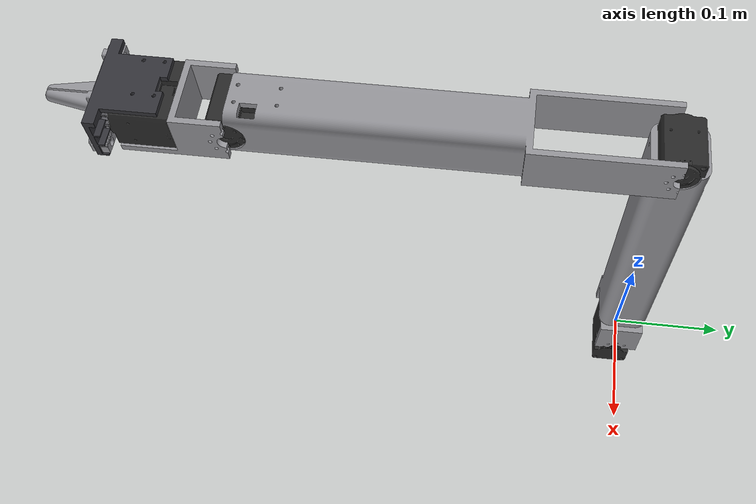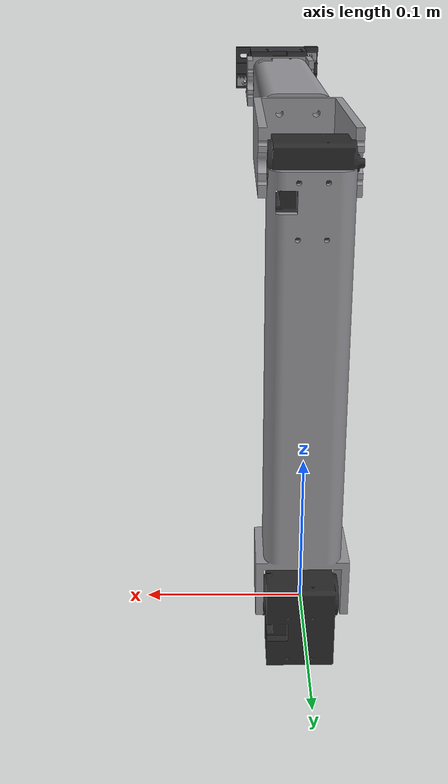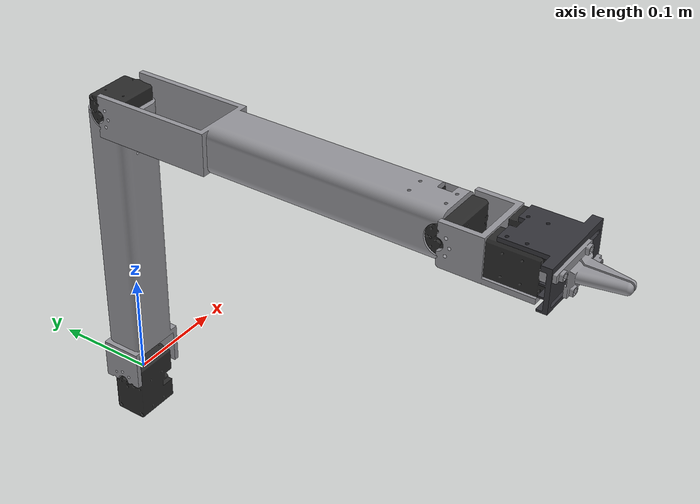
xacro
<?xml version="1.0"?>
<!-- Mounted RAV manipulator using the real Dynamixel ros2_control hardware. -->
<robot name="rav_manipulator" xmlns:xacro="http://www.ros.org/wiki/xacro">
  <xacro:arg name="use_fake_hardware" default="true"/>
  <xacro:include filename="$(find rav_description)/urdf/rav_manipulator.urdf.xacro"/>

  <link name="manipulator_world"/>
  <xacro:rav_manipulator
      parent_link="manipulator_world"
      mount_xyz="0 0 0"
      mount_rpy="0 0 0"
      use_fake_hardware="false"/>

  <!-- Hardware real: abre a porta serial e habilita os motores Dynamixel. -->
  <ros2_control name="RavManipulatorDynamixelReal" type="system">
    <hardware>
      <plugin>rav_dynamixel_hardware/RavDynamixelHardware</plugin>
      <param name="dry_run">false</param>
      <param name="enable_motors">true</param>
      <param name="device">/dev/serial/by-id/usb-CM-900_ROBOTIS_Virtual_COM_Port-if00</param>
      <param name="baud">1000000</param>
      <param name="profile_velocity">70</param>
      <param name="profile_acceleration">24</param>
    </hardware>

    <joint name="shoulder_joint">
      <param name="id">1</param>
      <param name="direction">1</param>
      <param name="zero_tick">2048</param>
      <param name="min_tick">1024</param>
      <param name="max_tick">3072</param>
      <command_interface name="position"/>
      <state_interface name="position"/>
      <state_interface name="velocity"/>
    </joint>

    <joint name="elbow_joint">
      <param name="id">2</param>
      <param name="direction">1</param>
      <param name="zero_tick">2048</param>
      <param name="min_tick">1024</param>
      <param name="max_tick">3072</param>
      <command_interface name="position"/>
      <state_interface name="position"/>
      <state_interface name="velocity"/>
    </joint>

    <joint name="wrist_joint">
      <param name="id">3</param>
      <param name="direction">1</param>
      <param name="zero_tick">2048</param>
      <param name="min_tick">1024</param>
      <param name="max_tick">3072</param>
      <command_interface name="position"/>
      <state_interface name="position"/>
      <state_interface name="velocity"/>
    </joint>
  </ros2_control>

</robot>

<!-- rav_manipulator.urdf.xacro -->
<robot name="rav_manipulator" xmlns:xacro="http://www.ros.org/wiki/xacro">

  <xacro:arg name="standalone" default="false"/>
  <xacro:arg name="hardware_mode" default="dry_run"/>

  <xacro:property name="standalone_mode" value="$(arg standalone)"/>
  <xacro:property name="selected_hardware_mode" value="$(arg hardware_mode)"/>

  <xacro:macro
      name="rav_provisional_inertial"
      params="mass xyz ixx iyy izz">
    <inertial>
      <origin xyz="${xyz}" rpy="0 0 0"/>
      <mass value="${mass}"/>
      <inertia
          ixx="${ixx}" ixy="0.0" ixz="0.0"
          iyy="${iyy}" iyz="0.0"
          izz="${izz}"/>
    </inertial>
  </xacro:macro>

  <xacro:macro
      name="rav_manipulator"
      params="parent_link
              mount_xyz:='0 0 0'
              mount_rpy:='0 0 0'
              use_fake_hardware:=false
              hardware_mode:='none'">

    <!-- Geometria validada dos eixos do braço. -->
    <xacro:property name="j1_to_j2_y" value="0.000029639983"/>
    <xacro:property name="j1_to_j2_z" value="0.289118072919"/>
    <xacro:property name="j2_to_j3_y" value="-0.334030187591"/>
    <xacro:property name="j2_to_j3_z" value="-0.000015558969"/>

    <xacro:property name="joint_lower_limit" value="${-pi / 2.0}"/>
    <xacro:property name="joint_upper_limit" value="${ pi / 2.0}"/>
    <xacro:property name="joint_effort_limit" value="10.0"/>
    <xacro:property name="joint_velocity_limit" value="1.0"/>

    <xacro:property name="gripper_max_travel_ticks" value="1653"/>
    <xacro:property name="dxl_ticks_per_rev" value="4096"/>
    <xacro:property name="gripper_max_travel" value="0.017749692"/>

    <xacro:property
        name="gripper_pinion_max_angle"
        value="${gripper_max_travel_ticks * 2.0 * pi / dxl_ticks_per_rev}"/>
    <xacro:property
        name="gripper_pinion_radius"
        value="${gripper_max_travel / gripper_pinion_max_angle}"/>

    <xacro:property name="gripper_pinion_effort_limit" value="11.175"/>
    <xacro:property name="gripper_pinion_velocity_limit" value="1.0"/>

    <xacro:property
        name="gripper_finger_effort_limit"
        value="${gripper_pinion_effort_limit / gripper_pinion_radius}"/>
    <xacro:property
        name="gripper_finger_velocity_limit"
        value="${gripper_pinion_velocity_limit * gripper_pinion_radius}"/>

    <xacro:property name="gripper_finger_closed_offset_mesh_estimate" value="0.024215855"/>
    <xacro:property name="gripper_finger_closed_offset_visual_correction_deg" value="20.0"/>
    <xacro:property
        name="gripper_finger_closed_offset"
        value="${gripper_finger_closed_offset_mesh_estimate - gripper_pinion_radius * gripper_finger_closed_offset_visual_correction_deg * pi / 180.0}"/>

    <!-- Origem CAD usada pelas meshes do punho e da gripper. -->
    <xacro:property name="gripper_cad_origin_y" value="0.390472110866"/>
    <xacro:property name="gripper_cad_origin_z" value="-1.011787152338"/>
    <xacro:property
        name="gripper_cad_origin"
        value="0 ${gripper_cad_origin_y} ${gripper_cad_origin_z}"/>

    <xacro:property name="gripper_pinion_mesh_center_x" value="0.015923602"/>
    <xacro:property name="gripper_pinion_mesh_center_y" value="-0.481112213"/>
    <xacro:property name="gripper_pinion_mesh_center_z" value="1.013871002"/>

    <material name="rav_manipulator_motor">
      <color rgba="0.16 0.16 0.16 1.0"/>
    </material>

    <material name="rav_manipulator_structure">
      <color rgba="0.58 0.58 0.60 1.0"/>
    </material>

    <material name="rav_gripper_base_material">
      <color rgba="0.20 0.20 0.22 1.0"/>
    </material>

    <material name="rav_gripper_finger_material">
      <color rgba="0.58 0.58 0.60 1.0"/>
    </material>

    <material name="rav_gripper_pinion_material">
      <color rgba="0.35 0.35 0.37 1.0"/>
    </material>

    <!-- Mount externo. -->
    <joint name="rav_manipulator_mount_joint" type="fixed">
      <parent link="${parent_link}"/>
      <child link="manipulator_base_link"/>
      <origin xyz="${mount_xyz}" rpy="${mount_rpy}"/>
    </joint>

    <!-- Dynamixel 1. -->
    <link name="manipulator_base_link">
      <xacro:rav_provisional_inertial
          mass="1.0"
          xyz="0 0 0"
          ixx="0.004" iyy="0.004" izz="0.004"/>

      <visual>
        <origin xyz="0 0.047471563258 -0.733684638388" rpy="0 0 0"/>
        <geometry>
          <mesh
              filename="package://rav_description/meshes/manipulator/dynamixel_xm540.stl"
              scale="0.001 0.001 0.001"/>
        </geometry>
        <material name="rav_manipulator_motor"/>
      </visual>

      <collision>
        <origin xyz="0 0.047471563258 -0.733684638388" rpy="0 0 0"/>
        <geometry>
          <mesh
              filename="package://rav_description/meshes/manipulator/dynamixel_xm540.stl"
              scale="0.001 0.001 0.001"/>
        </geometry>
      </collision>
    </link>

    <joint name="shoulder_joint" type="revolute">
      <parent link="manipulator_base_link"/>
      <child link="shoulder_link"/>
      <origin xyz="0 0 0" rpy="0 0 0"/>
      <axis xyz="1 0 0"/>
      <limit
          lower="${joint_lower_limit}"
          upper="${joint_upper_limit}"
          effort="${joint_effort_limit}"
          velocity="${joint_velocity_limit}"/>
    </joint>

    <!-- Link 1 e Dynamixel 2. -->
    <link name="shoulder_link">
      <xacro:rav_provisional_inertial
          mass="1.5"
          xyz="0 0.000015 0.139059"
          ixx="0.010" iyy="0.010" izz="0.002"/>

      <visual>
        <origin xyz="0 0.047471563258 -0.733684638388" rpy="0 0 0"/>
        <geometry>
          <mesh
              filename="package://rav_description/meshes/manipulator/link_1_assembly.stl"
              scale="0.001 0.001 0.001"/>
        </geometry>
        <material name="rav_manipulator_structure"/>
      </visual>

      <collision>
        <origin xyz="0 0.047471563258 -0.733684638388" rpy="0 0 0"/>
        <geometry>
          <mesh
              filename="package://rav_description/meshes/manipulator/link_1_assembly.stl"
              scale="0.001 0.001 0.001"/>
        </geometry>
      </collision>

      <visual>
        <origin xyz="0 0.047501203241 -0.444566565469" rpy="0 0 0"/>
        <geometry>
          <mesh
              filename="package://rav_description/meshes/manipulator/dynamixel_xm540.stl"
              scale="0.001 0.001 0.001"/>
        </geometry>
        <material name="rav_manipulator_motor"/>
      </visual>

      <collision>
        <origin xyz="0 0.047501203241 -0.444566565469" rpy="0 0 0"/>
        <geometry>
          <mesh
              filename="package://rav_description/meshes/manipulator/dynamixel_xm540.stl"
              scale="0.001 0.001 0.001"/>
        </geometry>
      </collision>
    </link>

    <joint name="elbow_joint" type="revolute">
      <parent link="shoulder_link"/>
      <child link="elbow_link"/>
      <origin xyz="0 ${j1_to_j2_y} ${j1_to_j2_z}" rpy="0 0 0"/>
      <axis xyz="1 0 0"/>
      <limit
          lower="${joint_lower_limit}"
          upper="${joint_upper_limit}"
          effort="${joint_effort_limit}"
          velocity="${joint_velocity_limit}"/>
    </joint>

    <!-- Link 2 e Dynamixel 3. -->
    <link name="elbow_link">
      <xacro:rav_provisional_inertial
          mass="1.2"
          xyz="0 -0.171515 0"
          ixx="0.012" iyy="0.002" izz="0.012"/>

      <visual>
        <origin xyz="0 0.047441923275 -1.011802711307" rpy="0 0 0"/>
        <geometry>
          <mesh
              filename="package://rav_description/meshes/manipulator/link_2_assembly.stl"
              scale="0.001 0.001 0.001"/>
        </geometry>
        <material name="rav_manipulator_structure"/>
      </visual>

      <collision>
        <origin xyz="0 0.047441923275 -1.011802711307" rpy="0 0 0"/>
        <geometry>
          <mesh
              filename="package://rav_description/meshes/manipulator/link_2_assembly.stl"
              scale="0.001 0.001 0.001"/>
        </geometry>
      </collision>

      <visual>
        <origin
            xyz="0 0.399654450797 0.047456004289"
            rpy="1.57079632679 0 0"/>
        <geometry>
          <mesh
              filename="package://rav_description/meshes/manipulator/dynamixel_xm540.stl"
              scale="0.001 0.001 0.001"/>
        </geometry>
        <material name="rav_manipulator_motor"/>
      </visual>

      <collision>
        <origin
            xyz="0 0.399654450797 0.047456004289"
            rpy="1.57079632679 0 0"/>
        <geometry>
          <mesh
              filename="package://rav_description/meshes/manipulator/dynamixel_xm540.stl"
              scale="0.001 0.001 0.001"/>
        </geometry>
      </collision>
    </link>

    <joint name="wrist_joint" type="revolute">
      <parent link="elbow_link"/>
      <child link="wrist_link"/>
      <origin xyz="0 ${j2_to_j3_y} ${j2_to_j3_z}" rpy="0 0 0"/>
      <axis xyz="1 0 0"/>
      <limit
          lower="${joint_lower_limit}"
          upper="${joint_upper_limit}"
          effort="${joint_effort_limit}"
          velocity="${joint_velocity_limit}"/>
    </joint>

    <!-- Punho e Dynamixel 4 visual. -->
    <link name="wrist_link">
      <xacro:rav_provisional_inertial
          mass="0.8"
          xyz="0 0 0"
          ixx="0.004" iyy="0.004" izz="0.004"/>

      <visual>
        <origin xyz="0 0.390472110866 -1.011787152338" rpy="0 0 0"/>
        <geometry>
          <mesh
              filename="package://rav_description/meshes/manipulator/wrist_assembly.stl"
              scale="0.001 0.001 0.001"/>
        </geometry>
        <material name="rav_manipulator_structure"/>
      </visual>

      <collision>
        <origin xyz="0 0.390472110866 -1.011787152338" rpy="0 0 0"/>
        <geometry>
          <mesh
              filename="package://rav_description/meshes/manipulator/wrist_assembly.stl"
              scale="0.001 0.001 0.001"/>
        </geometry>
      </collision>

      <visual>
        <origin
            xyz="-0.718 -0.0619 0.0499"
            rpy="1.57079632679 0 1.57079632679"/>
        <geometry>
          <mesh
              filename="package://rav_description/meshes/manipulator/dynamixel_xm540.stl"
              scale="0.001 0.001 0.001"/>
        </geometry>
        <material name="rav_manipulator_motor"/>
      </visual>

      <collision>
        <origin
            xyz="-0.718 -0.0619 0.0499"
            rpy="1.57079632679 0 1.57079632679"/>
        <geometry>
          <mesh
              filename="package://rav_description/meshes/manipulator/dynamixel_xm540.stl"
              scale="0.001 0.001 0.001"/>
        </geometry>
      </collision>
    </link>

    <!-- Base da gripper. -->
    <link name="gripper_base_link">
      <visual>
        <origin xyz="${gripper_cad_origin}" rpy="0 0 0"/>
        <geometry>
          <mesh
              filename="package://rav_description/meshes/manipulator/gripper/gripper_base.stl"
              scale="0.001 0.001 0.001"/>
        </geometry>
        <material name="rav_gripper_base_material"/>
      </visual>

      <collision>
        <origin xyz="${gripper_cad_origin}" rpy="0 0 0"/>
        <geometry>
          <mesh
              filename="package://rav_description/meshes/manipulator/gripper/gripper_base.stl"
              scale="0.001 0.001 0.001"/>
        </geometry>
      </collision>
    </link>

    <joint name="gripper_base_joint" type="fixed">
      <parent link="wrist_link"/>
      <child link="gripper_base_link"/>
      <origin xyz="0 0 0" rpy="0 0 0"/>
    </joint>

    <link name="gripper_pinion_link">
      <visual>
        <origin
            xyz="${-gripper_pinion_mesh_center_x} ${-gripper_pinion_mesh_center_y} ${-gripper_pinion_mesh_center_z}"
            rpy="0 0 0"/>
        <geometry>
          <mesh
              filename="package://rav_description/meshes/manipulator/gripper/pinhao.stl"
              scale="0.001 0.001 0.001"/>
        </geometry>
        <material name="rav_gripper_pinion_material"/>
      </visual>

      <collision>
        <origin
            xyz="${-gripper_pinion_mesh_center_x} ${-gripper_pinion_mesh_center_y} ${-gripper_pinion_mesh_center_z}"
            rpy="0 0 0"/>
        <geometry>
          <mesh
              filename="package://rav_description/meshes/manipulator/gripper/pinhao.stl"
              scale="0.001 0.001 0.001"/>
        </geometry>
      </collision>
    </link>

    <joint name="gripper_pinion_joint" type="revolute">
      <parent link="gripper_base_link"/>
      <child link="gripper_pinion_link"/>
      <origin
          xyz="${gripper_pinion_mesh_center_x} ${gripper_pinion_mesh_center_y + gripper_cad_origin_y} ${gripper_pinion_mesh_center_z + gripper_cad_origin_z}"
          rpy="0 0 0"/>
      <axis xyz="0 1 0"/>
      <limit
          lower="0.0"
          upper="${gripper_pinion_max_angle}"
          effort="${gripper_pinion_effort_limit}"
          velocity="${gripper_pinion_velocity_limit}"/>
    </joint>

    <!-- Meshes dos dedos: o CAD foi exportado na abertura máxima. -->
    <link name="left_finger_link">
      <visual>
        <origin
            xyz="${-gripper_finger_closed_offset} 0.390472110866 -1.011787152338"
            rpy="0 0 0"/>
        <geometry>
          <mesh
              filename="package://rav_description/meshes/manipulator/gripper/dedo_esquerdo.stl"
              scale="0.001 0.001 0.001"/>
        </geometry>
        <material name="rav_gripper_finger_material"/>
      </visual>

      <collision>
        <origin
            xyz="${-gripper_finger_closed_offset} 0.390472110866 -1.011787152338"
            rpy="0 0 0"/>
        <geometry>
          <mesh
              filename="package://rav_description/meshes/manipulator/gripper/dedo_esquerdo.stl"
              scale="0.001 0.001 0.001"/>
        </geometry>
      </collision>
    </link>

    <link name="right_finger_link">
      <visual>
        <origin
            xyz="${gripper_finger_closed_offset} 0.390472110866 -1.011787152338"
            rpy="0 0 0"/>
        <geometry>
          <mesh
              filename="package://rav_description/meshes/manipulator/gripper/dedo_direito.stl"
              scale="0.001 0.001 0.001"/>
        </geometry>
        <material name="rav_gripper_finger_material"/>
      </visual>

      <collision>
        <origin
            xyz="${gripper_finger_closed_offset} 0.390472110866 -1.011787152338"
            rpy="0 0 0"/>
        <geometry>
          <mesh
              filename="package://rav_description/meshes/manipulator/gripper/dedo_direito.stl"
              scale="0.001 0.001 0.001"/>
        </geometry>
      </collision>
    </link>

    <joint name="left_finger_joint" type="prismatic">
      <parent link="gripper_base_link"/>
      <child link="left_finger_link"/>
      <origin xyz="0 0 0" rpy="0 0 0"/>
      <axis xyz="1 0 0"/>
      <limit
          lower="0.0"
          upper="${gripper_max_travel}"
          effort="${gripper_finger_effort_limit}"
          velocity="${gripper_finger_velocity_limit}"/>
      <mimic joint="gripper_pinion_joint" multiplier="${gripper_pinion_radius}" offset="0.0"/>
    </joint>

    <joint name="right_finger_joint" type="prismatic">
      <parent link="gripper_base_link"/>
      <child link="right_finger_link"/>
      <origin xyz="0 0 0" rpy="0 0 0"/>
      <axis xyz="-1 0 0"/>
      <limit
          lower="0.0"
          upper="${gripper_max_travel}"
          effort="${gripper_finger_effort_limit}"
          velocity="${gripper_finger_velocity_limit}"/>
      <mimic joint="gripper_pinion_joint" multiplier="${gripper_pinion_radius}" offset="0.0"/>
    </joint>

    <!-- TCP atual da gripper; substitui a esfera wrist_tip provisória. -->
    <link name="gripper_tcp"/>

    <joint name="gripper_tcp_joint" type="fixed">
      <parent link="gripper_base_link"/>
      <child link="gripper_tcp"/>
      <origin xyz="0 -0.140 0.002" rpy="0 0 0"/>
    </joint>

    <!-- GenericSystem preservado para usos que instanciem a macro dessa forma. -->
    <xacro:if value="${use_fake_hardware}">
      <ros2_control name="RavManipulatorFakeSystem" type="system">
        <hardware>
          <plugin>mock_components/GenericSystem</plugin>
        </hardware>

        <joint name="shoulder_joint">
          <command_interface name="position"/>
          <state_interface name="position"/>
          <state_interface name="velocity"/>
        </joint>

        <joint name="elbow_joint">
          <command_interface name="position"/>
          <state_interface name="position"/>
          <state_interface name="velocity"/>
        </joint>

        <joint name="wrist_joint">
          <command_interface name="position"/>
          <state_interface name="position"/>
          <state_interface name="velocity"/>
        </joint>

        <joint name="gripper_pinion_joint">
          <command_interface name="position"/>
          <state_interface name="position"/>
          <state_interface name="velocity"/>
        </joint>
      </ros2_control>
    </xacro:if>

  </xacro:macro>

  <!-- Instanciação usada diretamente pelos launches real e dry-run. -->
  <xacro:if value="${standalone_mode}">
    <link name="manipulator_world"/>

    <xacro:rav_manipulator
        parent_link="manipulator_world"
        mount_xyz="0 0 0"
        mount_rpy="0 0 0"
        use_fake_hardware="false"
        hardware_mode="${selected_hardware_mode}"/>

    <xacro:if value="${selected_hardware_mode == 'dry_run'}">
      <ros2_control name="RavManipulatorDynamixelDryRun" type="system">
        <hardware>
          <plugin>rav_dynamixel_hardware/RavDynamixelHardware</plugin>
          <param name="dry_run">true</param>
        </hardware>

        <joint name="shoulder_joint">
          <command_interface name="position"/>
          <state_interface name="position"/>
          <state_interface name="velocity"/>
        </joint>

        <joint name="elbow_joint">
          <command_interface name="position"/>
          <state_interface name="position"/>
          <state_interface name="velocity"/>
        </joint>

        <joint name="wrist_joint">
          <command_interface name="position"/>
          <state_interface name="position"/>
          <state_interface name="velocity"/>
        </joint>

        <joint name="gripper_pinion_joint">
          <command_interface name="position"/>
          <state_interface name="position"/>
          <state_interface name="velocity"/>
        </joint>
      </ros2_control>
    </xacro:if>

    <xacro:if value="${selected_hardware_mode == 'real'}">
      <ros2_control name="RavManipulatorDynamixelReal" type="system">
        <hardware>
          <plugin>rav_dynamixel_hardware/RavDynamixelHardware</plugin>
          <param name="dry_run">false</param>
          <param name="enable_motors">true</param>
          <param name="device">/dev/serial/by-id/usb-CM-900_ROBOTIS_Virtual_COM_Port-if00</param>
          <param name="baud">1000000</param>
          <param name="profile_velocity">70</param>
          <param name="profile_acceleration">24</param>
        </hardware>

        <joint name="shoulder_joint">
          <param name="id">1</param>
          <param name="direction">1</param>
          <param name="zero_tick">2048</param>
          <param name="min_tick">1024</param>
          <param name="max_tick">3072</param>
          <command_interface name="position"/>
          <state_interface name="position"/>
          <state_interface name="velocity"/>
        </joint>

        <joint name="elbow_joint">
          <param name="id">2</param>
          <param name="direction">1</param>
          <param name="zero_tick">2048</param>
          <param name="min_tick">1024</param>
          <param name="max_tick">3072</param>
          <command_interface name="position"/>
          <state_interface name="position"/>
          <state_interface name="velocity"/>
        </joint>

        <joint name="wrist_joint">
          <param name="id">3</param>
          <param name="direction">1</param>
          <param name="zero_tick">2048</param>
          <param name="min_tick">1024</param>
          <param name="max_tick">3072</param>
          <command_interface name="position"/>
          <state_interface name="position"/>
          <state_interface name="velocity"/>
        </joint>

        <joint name="gripper_pinion_joint">
          <param name="id">4</param>
          <param name="direction">-1</param>
          <param name="zero_tick">2048</param>
          <param name="min_tick">395</param>
          <param name="max_tick">2048</param>
          <command_interface name="position"/>
          <state_interface name="position"/>
          <state_interface name="velocity"/>
        </joint>
      </ros2_control>
    </xacro:if>
  </xacro:if>

</robot>
